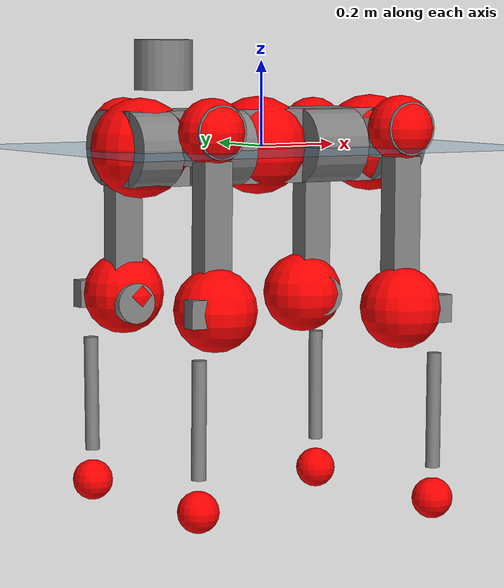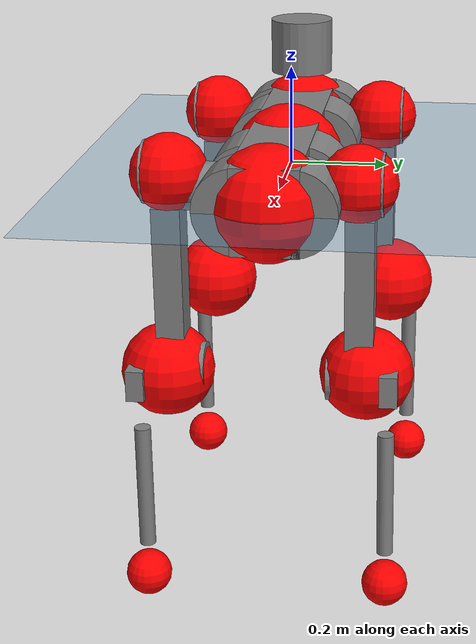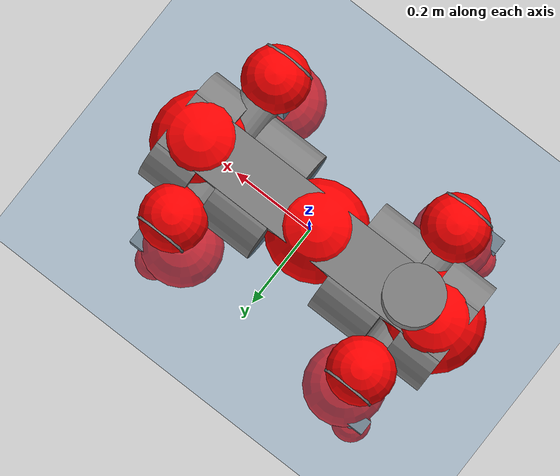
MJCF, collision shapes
<mujoco model="anymal_c">
  <compiler angle="radian" assetdir="assets" balanceinertia="true" inertiafromgeom="false"/>

  <option timestep="0.005" density="1.2" viscosity="2e-05"/>

  <size nkey="1"/>

  <visual>
    <quality shadowsize="8192"/>
    <map shadowclip="0.5"/>
  </visual>

  <default>
    <default class="/">
      <material specular="0" shininess="0.25"/>
      <geom contype="0" conaffinity="0" group="1" solref="-1000 -80"/>
      <site size="0.01 0.005 0.005" group="5"/>
      <general forcelimited="true" forcerange="-80 80" biastype="affine" gainprm="80" biasprm="0 -80 -2"/>
      <default class="anymal_c">
        <joint armature="0.01" damping="0.01" frictionloss="0.1"/>
        <default class="visual">
          <geom type="mesh" group="2"/>
          <default class="visual_zflip"/>
        </default>
        <default class="collision">
          <geom type="cylinder" group="3"/>
          <default class="foot">
            <geom size="0.03 0 0" type="sphere" condim="6" priority="1" friction="0.8 0.02 0.01" solimp="0.015 1 0.03"/>
          </default>
        </default>
      </default>
      <default class="reward_collision_sphere">
        <geom group="5" rgba="1 0 0 1"/>
      </default>
    </default>
  </default>

  <asset>
    <texture type="skybox" colorspace="auto" name="//unnamed_texture_0" builtin="gradient" rgb1="0.95 0.95 0.95" rgb2="0.95 0.95 0.95" width="100" height="600"/>
    <texture type="2d" colorspace="auto" name="texplane" builtin="checker" rgb1="0.345 0.575 0.748" rgb2="0.345 0.575 0.748" markrgb="1 1 1" width="512" height="512"/>
    <texture type="2d" colorspace="linear" name="base" file="base.png"/>
    <texture type="2d" colorspace="linear" name="top_shell" file="top_shell.png"/>
    <texture type="2d" colorspace="linear" name="bottom_shell" file="bottom_shell.png"/>
    <texture type="2d" colorspace="linear" name="remote" file="remote.png"/>
    <texture type="2d" colorspace="linear" name="hatch" file="hatch.png"/>
    <texture type="2d" colorspace="linear" name="handle" file="handle.png"/>
    <texture type="2d" colorspace="linear" name="face" file="face.png"/>
    <texture type="2d" colorspace="linear" name="battery" file="battery.png"/>
    <texture type="2d" colorspace="linear" name="lidar_cage" file="lidar_cage.png"/>
    <texture type="2d" colorspace="linear" name="depth_camera" file="depth_camera.png"/>
    <texture type="2d" colorspace="linear" name="wide_angle_camera" file="wide_angle_camera.png"/>
    <texture type="2d" colorspace="linear" name="lidar" file="lidar.png"/>
    <texture type="2d" colorspace="linear" name="drive" file="drive.png"/>
    <texture type="2d" colorspace="linear" name="hip_l" file="hip_l.png"/>
    <texture type="2d" colorspace="linear" name="shank_l" file="shank_l.png"/>
    <texture type="2d" colorspace="linear" name="foot" file="foot.png"/>
    <texture type="2d" colorspace="linear" name="thigh" file="thigh.png"/>
    <texture type="2d" colorspace="linear" name="shank_r" file="shank_r.png"/>
    <texture type="2d" colorspace="linear" name="hip_r" file="hip_r.png"/>
    <material name="MatPlane" class="/" texture="texplane" texuniform="true" texrepeat="2 2" specular="0.9" shininess="0.5"/>
    <material name="black_plastic" class="/" rgba="0.007 0.007 0.007 1"/>
    <material name="green" class="/" rgba="0.052 0.178 0.033 1"/>
    <material name="red" class="/" rgba="0.178 0.006 0.005 1"/>
    <material name="yellow" class="/" rgba="0.178 0.119 0.006 1"/>
    <material name="lwl" class="/" rgba="0.8 0.8 0.8 1"/>
    <material name="base" class="/" texture="base"/>
    <material name="top_shell" class="/" texture="top_shell"/>
    <material name="bottom_shell" class="/" texture="bottom_shell"/>
    <material name="hip_l" class="/" texture="hip_l"/>
    <material name="thigh" class="/" texture="thigh"/>
    <material name="shank_l" class="/" texture="shank_l"/>
    <material name="foot" class="/" texture="foot"/>
    <material name="hip_r" class="/" texture="hip_r"/>
    <material name="shank" class="/" texture="shank_r"/>
    <material name="hatch" class="/" texture="hatch"/>
    <material name="remote" class="/" texture="remote"/>
    <material name="handle" class="/" texture="handle"/>
    <material name="face" class="/" texture="face"/>
    <material name="depth_camera" class="/" texture="depth_camera"/>
    <material name="wide_angle_camera" class="/" texture="wide_angle_camera"/>
    <material name="battery" class="/" texture="battery"/>
    <material name="lidar_cage" class="/" texture="lidar_cage"/>
    <material name="lidar" class="/" texture="lidar"/>
    <material name="drive" class="/" texture="drive"/>
    <mesh name="base_0" class="/" file="base_0.obj"/>
    <mesh name="base_1" class="/" file="base_1.obj"/>
    <mesh name="base_2" class="/" file="base_2.obj"/>
    <mesh name="base_3" class="/" file="base_3.obj"/>
    <mesh name="base_4" class="/" file="base_4.obj"/>
    <mesh name="base_5" class="/" file="base_5.obj"/>
    <mesh name="top_shell" class="/" file="top_shell.obj"/>
    <mesh name="bottom_shell" class="/" file="bottom_shell.obj"/>
    <mesh name="remote" class="/" file="remote.obj"/>
    <mesh name="handle" class="/" file="handle.obj"/>
    <mesh name="face" class="/" file="face.obj"/>
    <mesh name="wide_angle_camera" class="/" file="wide_angle_camera.obj"/>
    <mesh name="depth_camera" class="/" file="depth_camera.obj"/>
    <mesh name="battery" class="/" file="battery.obj"/>
    <mesh name="lidar_cage" class="/" file="lidar_cage.obj"/>
    <mesh name="lidar" class="/" file="lidar.obj"/>
    <mesh name="drive" class="/" file="drive.obj"/>
    <mesh name="hip_l" class="/" file="hip_l.obj"/>
    <mesh name="thigh" class="/" file="thigh.obj"/>
    <mesh name="shank_l" class="/" file="shank_l.obj"/>
    <mesh name="foot" class="/" file="foot.obj"/>
    <mesh name="hip_r" class="/" file="hip_r.obj"/>
    <mesh name="hatch" class="/" file="hatch.obj"/>
    <mesh name="shank_r" class="/" file="shank_r.obj"/>
  </asset>

  <worldbody>
    <geom name="floor" class="/" size="100 100 0.125" type="plane" group="0" material="MatPlane"/>
    <light name="toplight_shadow" class="/" pos="0 0 5" dir="0.0990148 0.0990148 -0.990148" type="directional" ambient="0.04 0.04 0.04" diffuse="0.55 0.55 0.55" specular="0.12 0.12 0.12"/>
    <light name="toplight_fill" class="/" pos="0 0 5" dir="0.0990148 0.0990148 -0.990148" type="directional" castshadow="false" ambient="0.04 0.04 0.04" diffuse="0.3 0.3 0.3" specular="0.08 0.08 0.08"/>
    <body name="trunk" childclass="anymal_c" pos="-0.0145575 -0.00780711 0.00284276" quat="0.999996 0.00236615 0.00157628 0.000300086">
      <inertial pos="0.000753182 0.0028178 0.069641" quat="0.475643 0.488436 0.539513 0.494086" mass="16.8337" diaginertia="0.0721219 0.111813 1.21486"/>
      <joint name="//unnamed_joint_0" type="free" armature="0" damping="0" frictionloss="0"/>
      <geom name="//unnamed_geom_1" class="visual" material="green" mesh="base_0"/>
      <geom name="//unnamed_geom_2" class="visual" material="yellow" mesh="base_1"/>
      <geom name="//unnamed_geom_3" class="visual" material="red" mesh="base_2"/>
      <geom name="//unnamed_geom_4" class="visual" material="black_plastic" mesh="base_3"/>
      <geom name="//unnamed_geom_5" class="visual" material="lwl" mesh="base_4"/>
      <geom name="//unnamed_geom_6" class="visual" material="base" mesh="base_5"/>
      <geom name="trunk_1" class="collision" size="0.278261 0.0671664 0.0863568" type="box"/>
      <geom name="trunk_2" class="collision" size="0.0863568 0.0695652" pos="0.151883 0.0530155 0" quat="0.707107 0 0.707107 0"/>
      <geom name="trunk_3" class="collision" size="0.0863568 0.0695652" pos="-0.151883 0.0530155 0" quat="0.707107 0 0.707107 0"/>
      <geom name="trunk_4" class="collision" size="0.0863568 0.0695652" pos="0.151883 -0.0530155 0" quat="0.707107 0 0.707107 0"/>
      <geom name="trunk_5" class="collision" size="0.0863568 0.0695652" pos="-0.151883 -0.0530155 0" quat="0.707107 0 0.707107 0"/>
      <geom name="//unnamed_geom_12" class="visual" material="top_shell" mesh="top_shell"/>
      <geom name="//unnamed_geom_13" class="visual" material="bottom_shell" mesh="bottom_shell"/>
      <geom name="//unnamed_geom_14" class="visual" material="remote" mesh="remote"/>
      <geom name="//unnamed_geom_15" class="visual" material="handle" mesh="handle"/>
      <geom name="//unnamed_geom_16" class="visual" pos="0.289451 0 0" quat="1 0 0 0" material="face" mesh="face"/>
      <geom name="trunk_6" class="collision" size="0.0527736 0.0671664 0.0863568" pos="0.327858 0 0" type="box"/>
      <geom name="//unnamed_geom_18" class="collision" size="0.0863568 0.0527736" pos="0.327858 0.0530155 0" quat="0.707107 0 0.707107 0"/>
      <geom name="//unnamed_geom_19" class="collision" size="0.0863568 0.0527736" pos="0.327858 -0.0530155 0" quat="0.707107 0 0.707107 0"/>
      <geom name="//unnamed_geom_20" class="visual" pos="0.322406 0 -0.047055" quat="0.965926 0 0.258819 0" material="depth_camera" mesh="depth_camera"/>
      <geom name="//unnamed_geom_21" class="visual" pos="0.358234 0 0.0213006" material="wide_angle_camera" mesh="wide_angle_camera"/>
      <geom name="//unnamed_geom_22" class="visual_zflip" pos="-0.289451 0 0" quat="0 0 0 1" material="face" mesh="face"/>
      <geom name="trunk_7" class="collision" size="0.0527736 0.0671664 0.0863568" pos="-0.327858 0 0" quat="0 0 0 1" type="box"/>
      <geom name="//unnamed_geom_24" class="collision" size="0.0863568 0.0527736" pos="-0.327858 -0.0530155 0" quat="0 -0.707107 0 0.707107"/>
      <geom name="//unnamed_geom_25" class="collision" size="0.0863568 0.0527736" pos="-0.327858 0.0530155 0" quat="0 -0.707107 0 0.707107"/>
      <geom name="//unnamed_geom_26" class="visual" pos="-0.322406 0 -0.047055" quat="0 -0.258819 0 0.965926" material="depth_camera" mesh="depth_camera"/>
      <geom name="//unnamed_geom_27" class="visual_zflip" pos="-0.358234 0 0.0213006" quat="0 0 0 1" material="wide_angle_camera" mesh="wide_angle_camera"/>
      <geom name="//unnamed_geom_28" class="visual" material="battery" mesh="battery"/>
      <geom name="//unnamed_geom_29" class="visual" pos="0 0.058713 0.0358281" quat="0.683013 -0.183013 0.183013 0.683013" material="depth_camera" mesh="depth_camera"/>
      <geom name="//unnamed_geom_30" class="visual" pos="0 -0.058713 0.0358281" quat="0.683013 0.183013 0.183013 -0.683013" material="depth_camera" mesh="depth_camera"/>
      <geom name="//unnamed_geom_31" class="visual" pos="-0.254186 0 0.104582" quat="1 0 0 0" material="lidar_cage" mesh="lidar_cage"/>
      <geom name="trunk_8" class="collision" size="0.0671664 0.0575712" pos="-0.254186 0 0.189955"/>
      <geom name="//unnamed_geom_33" class="visual" pos="-0.254186 2.31996e-05 0.202334" quat="0.707107 0 0 -0.707107" material="lidar" mesh="lidar"/>
      <geom name="//unnamed_geom_34" class="visual" pos="0.209424 0.0790023 -1.14803e-08" quat="0.258819 0.965926 0 0" material="drive" mesh="drive"/>
      <geom name="//unnamed_geom_35" class="visual" pos="0.209424 -0.0790023 1.14803e-08" quat="0.258819 -0.965926 0 0" material="drive" mesh="drive"/>
      <geom name="//unnamed_geom_36" class="visual" pos="-0.209424 0.0790023 1.14803e-08" quat="0 0 0.965926 -0.258819" material="drive" mesh="drive"/>
      <geom name="//unnamed_geom_37" class="visual" pos="-0.209424 -0.0790023 -1.14803e-08" quat="0 0 -0.965926 -0.258819" material="drive" mesh="drive"/>
      <geom name="//unnamed_geom_38" class="visual" pos="0.0810043 0 0.103871" quat="1 0 0 0" material="hatch" mesh="hatch"/>
      <geom name="//unnamed_geom_39" class="reward_collision_sphere" size="0.115142"/>
      <geom name="//unnamed_geom_40" class="reward_collision_sphere" size="0.115142" pos="0.314241 0 0"/>
      <geom name="//unnamed_geom_41" class="reward_collision_sphere" size="0.115142" pos="-0.314241 0 0"/>
      <site name="imu" pos="0.142797 0.0265884 0.146203" size="0.0095952"/>
      <camera name="track" pos="0 -1.51473 0" quat="0.707107 0.707107 0 0" mode="trackcom"/>
      <camera name="ego_camera" pos="0.314241 0 -0.0569154" quat="-0.5 -0.5 0.5 0.5"/>
      <body name="LF_HIP" pos="0.20684 0.0786177 0.0101928" quat="0.253231 0.967399 0.00307075 0.00195031">
        <inertial pos="0.0550625 -0.0035628 -0.0107961" quat="-0.127799 0.708297 -0.137355 0.680527" mass="2.68662" diaginertia="0.00106201 0.00144469 0.0206098"/>
        <joint name="LF_HAA" pos="0 0 0" axis="0.9962 0.000295291 -0.0870985" stiffness="0.0735119" range="-0.661432 0.493637" armature="0.0167552" damping="0" frictionloss="0.0524364"/>
        <geom name="//unnamed_geom_42" class="visual" pos="0 -0.000675335 0.000110923" quat="0.258819 -0.965926 0 0" material="hip_l" mesh="hip_l"/>
        <geom name="//unnamed_geom_43" class="visual" pos="0.0418289 -0.0516986 -0.0347707" quat="0.183013 -0.683013 0.683013 0.183013" material="drive" mesh="drive"/>
        <geom name="//unnamed_geom_44" class="collision" size="0.047976 0.0671664" pos="0.0418289 -0.00905792 -0.00982502" quat="-0.353553 -0.612372 0.612372 -0.353553"/>
        <body name="LF_THIGH" pos="0.0527931 -0.0546175 -0.0499269" quat="0.181204 -0.685852 0.681046 0.181517">
          <inertial pos="0.024225 -0.000548424 -0.333005" quat="0.990942 0.031524 -0.104418 0.0783404" mass="2.8685" diaginertia="0.00535165 0.00805407 0.0271712"/>
          <joint name="LF_HFE" pos="0 0 0" axis="0.998854 -0.0145333 0.045605" stiffness="0.0533362" range="-3.30524 3.13121" armature="0.00248275" damping="0.0529878" frictionloss="0.144551"/>
          <geom name="//unnamed_geom_45" class="visual" pos="-0.00117489 -1.85135e-06 0" quat="0.707107 0 0 -0.707107" material="thigh" mesh="thigh"/>
          <geom name="//unnamed_geom_46" class="collision" size="0.0623688 0.0383808" pos="0.0279325 0 0" quat="0.5 0.5 -0.5 -0.5"/>
          <geom name="//unnamed_geom_47" class="collision" size="0.035982 0.0287856 0.135594" pos="0.0209494 0 -0.201074" quat="0.707107 0 0 -0.707107" type="box"/>
          <geom name="//unnamed_geom_48" class="visual" pos="0.0700407 0 -0.405522" quat="1 0 0 0" material="drive" mesh="drive"/>
          <geom name="//unnamed_geom_49" class="collision" size="0.047976 0.0671664" pos="0.0211589 0 -0.405522" quat="0.707107 0 0.707107 0"/>
          <geom name="//unnamed_geom_50" class="reward_collision_sphere" size="0.0767616" pos="0.0174578 0 0"/>
          <body name="LF_SHANK" pos="0.0682726 0.0169817 -0.401995" quat="0.999982 -0.00490466 -0.00310536 -0.00124643">
            <inertial pos="-0.00512417 -0.0408231 -0.114499" quat="0.988535 -0.115706 -0.0568309 -0.0786146" mass="0.39232" diaginertia="0.00169539 0.00198739 0.00664312"/>
            <joint name="LF_KFE" pos="0 0 0" axis="0.999366 0.00236555 -0.035524" range="-3.16106 3.22748" armature="0.00853468" damping="0.0619389" frictionloss="0.0800654"/>
            <geom name="//unnamed_geom_51" class="visual" pos="-0.000383105 -0.00204273 0" quat="0.707107 0 0 -0.707107" material="shank_l" mesh="shank_l"/>
            <geom name="LF_kfe_act" class="collision" size="0.0575712 0.0191904" pos="0.0139663 0 0" quat="0.5 0.5 -0.5 -0.5"/>
            <geom name="//unnamed_geom_53" class="collision" size="0.0551715 0.0323838 0.0182309" pos="0.0139663 -0.0435477 0" quat="0.5 0.5 -0.5 -0.5" type="box"/>
            <geom name="//unnamed_geom_54" class="visual" pos="0.00911307 -0.0672684 -0.480893" quat="0.382683 0 0 -0.92388" material="foot" mesh="foot"/>
            <geom name="LF_calf" class="collision" size="0.0167916 0.135534" pos="0.00911298 -0.0666101 -0.240446" quat="0.707107 0 0 -0.707107"/>
            <geom name="LF_foot" class="foot" size="0.0159835" pos="0.00911298 -0.0666101 -0.448878" quat="0.707107 0 0 -0.707107"/>
            <geom name="//unnamed_geom_57" class="reward_collision_sphere" size="0.095952" pos="-0.0349156 0 0"/>
            <geom name="//unnamed_geom_58" class="reward_collision_sphere" size="0.047976" pos="0.00911298 -0.0666101 -0.448878"/>
            <site name="LF_foot" class="foot" pos="0.00911298 -0.0666101 -0.448878" quat="0.707107 0 0 -0.707107" size="0.0095952"/>
          </body>
        </body>
      </body>
      <body name="RF_HIP" pos="0.226134 -0.0950076 0.0133096" quat="0.259457 -0.965754 -0.000871352 -0.00047053">
        <inertial pos="0.0233171 0.00542461 0.00328183" quat="0.160325 0.694457 0.162372 0.682394" mass="1.8689" diaginertia="0.000805858 0.0011215 0.0154487"/>
        <joint name="RF_HAA" pos="0 0 0" axis="0.997434 -0.010998 0.0707361" range="-0.183827 0.642458" armature="0.0099728" damping="0" frictionloss="0.161223"/>
        <geom name="//unnamed_geom_59" class="visual" pos="0 0.00067533 0.000110923" quat="0.258819 0.965926 0 0" material="hip_r" mesh="hip_r"/>
        <geom name="//unnamed_geom_60" class="visual" pos="0.0418289 0.0516986 -0.0347707" quat="0.183013 0.683013 0.683013 -0.183013" material="drive" mesh="drive"/>
        <geom name="//unnamed_geom_61" class="collision" size="0.047976 0.0671664" pos="0.0418289 0.00905792 -0.00982502" quat="-0.353553 0.612372 0.612372 0.353553"/>
        <body name="RF_THIGH" pos="0.0423029 0.0615195 -0.0699242" quat="0.183415 0.683121 0.683048 -0.182069">
          <inertial pos="0.0309044 -0.0174532 -0.355738" quat="0.992762 -0.00428277 -0.0809059 0.0886507" mass="2.46212" diaginertia="0.00491035 0.00641883 0.0220781"/>
          <joint name="RF_HFE" pos="0 0 0" axis="0.999316 -0.0369036 -0.0023009" range="-3.0637 2.95507" armature="0.012931" damping="0.0638164" frictionloss="0.0722083"/>
          <geom name="//unnamed_geom_62" class="visual" pos="-0.00117489 -1.85135e-06 0" quat="0.707107 0 0 -0.707107" material="thigh" mesh="thigh"/>
          <geom name="//unnamed_geom_63" class="collision" size="0.0623688 0.0383808" pos="0.0279325 0 0" quat="0.5 0.5 0.5 0.5"/>
          <geom name="//unnamed_geom_64" class="collision" size="0.035982 0.0287856 0.135594" pos="0.0209494 0 -0.201074" quat="0.707107 0 0 0.707107" type="box"/>
          <geom name="//unnamed_geom_65" class="visual" pos="0.0700407 0 -0.405522" quat="1 0 0 0" material="drive" mesh="drive"/>
          <geom name="//unnamed_geom_66" class="collision" size="0.047976 0.0671664" pos="0.0211589 0 -0.405522" quat="0.707107 0 0.707107 0"/>
          <geom name="//unnamed_geom_67" class="reward_collision_sphere" size="0.0767616" pos="0.0174578 0 0"/>
          <body name="RF_SHANK" pos="0.0699946 -0.00643332 -0.419306" quat="0.999966 -0.00272514 -0.00151051 -0.00759732">
            <inertial pos="-0.0137953 0.0574922 -0.128357" quat="0.990108 0.134778 0.00359094 0.0388364" mass="0.641264" diaginertia="0.00157058 0.00200221 0.00546416"/>
            <joint name="RF_KFE" pos="0 0 0" axis="0.999457 -0.0329302 0.00140371" range="-2.82804 3.19442" armature="0.00743493" damping="0" frictionloss="0.0272183"/>
            <geom name="//unnamed_geom_68" class="visual" pos="-0.000383103 0.00204273 0" quat="0.707107 0 0 0.707107" material="shank" mesh="shank_r"/>
            <geom name="RF_kfe_act" class="collision" size="0.0575712 0.0191904" pos="0.0139663 0 0" quat="0.5 0.5 0.5 0.5"/>
            <geom name="//unnamed_geom_70" class="collision" size="0.0551715 0.0323838 0.0182309" pos="0.0139663 0.0435477 0" quat="0.5 0.5 0.5 0.5" type="box"/>
            <geom name="//unnamed_geom_71" class="visual" pos="0.00911289 0.0672684 -0.480893" quat="0.382683 0 0 0.92388" material="foot" mesh="foot"/>
            <geom name="RF_calf" class="collision" size="0.0167916 0.135534" pos="0.00911298 0.0666101 -0.240446" quat="0.707107 0 0 0.707107"/>
            <geom name="RF_foot" class="foot" size="0.0304999" pos="0.00911298 0.0666101 -0.448878" quat="0.707107 0 0 0.707107"/>
            <geom name="//unnamed_geom_74" class="reward_collision_sphere" size="0.095952" pos="-0.0349156 0 0"/>
            <geom name="//unnamed_geom_75" class="reward_collision_sphere" size="0.047976" pos="0.00911298 0.0666101 -0.448878"/>
            <site name="RF_foot" class="foot" pos="0.00911298 0.0666101 -0.448878" quat="0.707107 0 0 0.707107" size="0.0095952"/>
          </body>
        </body>
      </body>
      <body name="LH_HIP" pos="-0.227297 0.0930413 0.00484204" quat="0.00178266 -0.000147028 0.966612 -0.256239">
        <inertial pos="0.0239347 0.0288601 -0.0120237" quat="0.0859863 0.67249 0.178126 0.713187" mass="2.75217" diaginertia="0.00105392 0.00123684 0.02268"/>
        <joint name="LH_HAA" pos="0 0 0" axis="0.999096 -0.0352452 -0.0237852" stiffness="0.00313351" range="-0.723061 0.565559" armature="0.00957745" damping="0.0101295" frictionloss="0.130496"/>
        <geom name="//unnamed_geom_76" class="visual" pos="0 0.00067533 0.000110923" quat="-0.258819 -0.965926 0 0" material="hip_r" mesh="hip_r"/>
        <geom name="//unnamed_geom_77" class="visual" pos="0.0418289 0.0516986 -0.0347707" quat="0.183013 0.683013 0.683013 -0.183013" material="drive" mesh="drive"/>
        <geom name="//unnamed_geom_78" class="collision" size="0.047976 0.0671664" pos="0.0418289 0.00905792 -0.00982502" quat="-0.353553 0.612372 0.612372 0.353553"/>
        <body name="LH_THIGH" pos="0.0320247 0.0472793 -0.0592736" quat="0.183261 0.680734 0.685612 -0.181527">
          <inertial pos="0.0162474 -0.0160064 -0.352027" quat="0.985447 -0.00281193 -0.143555 0.0909792" mass="2.15379" diaginertia="0.0048788 0.00612505 0.0251399"/>
          <joint name="LH_HFE" pos="0 0 0" axis="0.997204 0.0105153 -0.0739901" stiffness="0.0600974" range="-3.37273 2.92325" armature="0.00266764" damping="0" frictionloss="0.0302436"/>
          <geom name="//unnamed_geom_79" class="visual" pos="-0.00117489 -1.85135e-06 0" quat="0.707107 0 0 -0.707107" material="thigh" mesh="thigh"/>
          <geom name="//unnamed_geom_80" class="collision" size="0.0623688 0.0383808" pos="0.0279325 0 0" quat="0.5 0.5 -0.5 -0.5"/>
          <geom name="//unnamed_geom_81" class="collision" size="0.035982 0.0287856 0.135594" pos="0.0209494 0 -0.201074" quat="0.707107 0 0 -0.707107" type="box"/>
          <geom name="//unnamed_geom_82" class="visual" pos="0.0700407 0 -0.405522" quat="1 0 0 0" material="drive" mesh="drive"/>
          <geom name="//unnamed_geom_83" class="collision" size="0.047976 0.0671664" pos="0.0211589 0 -0.405522" quat="0.707107 0 0.707107 0"/>
          <geom name="//unnamed_geom_84" class="reward_collision_sphere" size="0.0767616" pos="0.0174578 0 0"/>
          <body name="LH_SHANK" pos="0.0807749 -0.013298 -0.38881" quat="0.999964 -0.0042665 0.00183869 0.00706419">
            <inertial pos="0.000445329 0.04593 -0.1325" quat="0.996808 0.0794202 -0.0048862 -0.00644924" mass="0.611449" diaginertia="0.00170788 0.00252734 0.00632831"/>
            <joint name="LH_KFE" pos="0 0 0" axis="0.999237 -0.0303279 -0.0246021" stiffness="0.0437663" range="-3.25469 3.35851" armature="0.00703412" damping="0.00575921" frictionloss="0.157408"/>
            <geom name="//unnamed_geom_85" class="visual" pos="-0.000383103 0.00204273 0" quat="-0.707107 0 0 -0.707107" material="shank" mesh="shank_r"/>
            <geom name="LH_kfe_act" class="collision" size="0.0575712 0.0191904" pos="0.0139663 0 0" quat="0.5 0.5 -0.5 -0.5"/>
            <geom name="//unnamed_geom_87" class="collision" size="0.0551715 0.0323838 0.0182309" pos="0.0139663 0.0435477 0" quat="0.5 0.5 -0.5 -0.5" type="box"/>
            <geom name="//unnamed_geom_88" class="visual" pos="0.00911289 0.0672684 -0.480893" quat="-0.382683 0 0 -0.92388" material="foot" mesh="foot"/>
            <geom name="LH_calf" class="collision" size="0.0167916 0.135534" pos="0.00911298 0.0666101 -0.240446" quat="0.707107 0 0 -0.707107"/>
            <geom name="LH_foot" class="foot" size="0.0431311" pos="0.00911298 0.0666101 -0.448878" quat="0.707107 0 0 -0.707107"/>
            <geom name="//unnamed_geom_91" class="reward_collision_sphere" size="0.095952" pos="-0.0349156 0 0"/>
            <geom name="//unnamed_geom_92" class="reward_collision_sphere" size="0.047976" pos="0.00911298 0.0666101 -0.448878"/>
            <site name="LH_foot" class="foot" pos="0.00911298 0.0666101 -0.448878" quat="0.707107 0 0 -0.707107" size="0.0095952"/>
          </body>
        </body>
      </body>
      <body name="RH_HIP" pos="-0.193666 -0.0869876 0.00363719" quat="-0.000596417 0.000529478 -0.964998 -0.262255">
        <inertial pos="0.0274826 -0.0211912 -0.0122505" quat="-0.149914 0.685374 -0.0693758 0.709208" mass="2.62302" diaginertia="0.000899875 0.00111815 0.0176056"/>
        <joint name="RH_HAA" pos="0 0 0" axis="0.996675 -0.0794068 -0.018244" stiffness="0.0224562" range="-0.716583 0.351648" armature="0.0136876" damping="0" frictionloss="0.0885343"/>
        <geom name="//unnamed_geom_93" class="visual" pos="0 -0.000675335 0.000110923" quat="-0.258819 0.965926 0 0" material="hip_l" mesh="hip_l"/>
        <geom name="//unnamed_geom_94" class="visual" pos="0.0418289 -0.0516986 -0.0347707" quat="-0.183013 0.683013 -0.683013 -0.183013" material="drive" mesh="drive"/>
        <geom name="//unnamed_geom_95" class="collision" size="0.047976 0.0671664" pos="0.0418289 -0.00905792 -0.00982502" quat="0.353553 0.612372 -0.612372 0.353553"/>
        <body name="RH_THIGH" pos="0.0382256 -0.0490749 -0.0741514" quat="-0.183386 0.682973 -0.681965 -0.18666">
          <inertial pos="0.0156054 0.0025803 -0.356185" quat="0.985043 -0.00782426 -0.16171 0.0589886" mass="2.86755" diaginertia="0.00508724 0.00610596 0.01889"/>
          <joint name="RH_HFE" pos="0 0 0" axis="0.999551 -0.00131462 0.0299457" stiffness="0.059443" range="-3.16523 2.99384" armature="0.00372985" damping="0.0738448" frictionloss="0.140135"/>
          <geom name="//unnamed_geom_96" class="visual" pos="-0.00117489 -1.85135e-06 0" quat="0.707107 0 0 -0.707107" material="thigh" mesh="thigh"/>
          <geom name="//unnamed_geom_97" class="collision" size="0.0623688 0.0383808" pos="0.0279325 0 0" quat="0.5 0.5 0.5 0.5"/>
          <geom name="//unnamed_geom_98" class="collision" size="0.035982 0.0287856 0.135594" pos="0.0209494 0 -0.201074" quat="0.707107 0 0 0.707107" type="box"/>
          <geom name="//unnamed_geom_99" class="visual" pos="0.0700407 0 -0.405522" quat="1 0 0 0" material="drive" mesh="drive"/>
          <geom name="//unnamed_geom_100" class="collision" size="0.047976 0.0671664" pos="0.0211589 0 -0.405522" quat="0.707107 0 0.707107 0"/>
          <geom name="//unnamed_geom_101" class="reward_collision_sphere" size="0.0767616" pos="0.0174578 0 0"/>
          <body name="RH_SHANK" pos="0.0708098 0.00155281 -0.402456" quat="1 0.000241599 0.000455502 -0.000247777">
            <inertial pos="0.0182016 -0.029914 -0.130394" quat="0.992625 -0.116689 -0.0131585 -0.0300941" mass="0.448679" diaginertia="0.00200698 0.00197768 0.00679652"/>
            <joint name="RH_KFE" pos="0 0 0" axis="0.999445 -0.00203135 -0.033265" stiffness="0.0218384" range="-2.99293 2.82699" armature="0.00980544" damping="0" frictionloss="0.0196774"/>
            <geom name="//unnamed_geom_102" class="visual" pos="-0.000383105 -0.00204273 0" quat="0.707107 0 0 -0.707107" material="shank_l" mesh="shank_l"/>
            <geom name="RH_kfe_act" class="collision" size="0.0575712 0.0191904" pos="0.0139663 0 0" quat="0.5 0.5 0.5 0.5"/>
            <geom name="//unnamed_geom_104" class="collision" size="0.0551715 0.0323838 0.0182309" pos="0.0139663 -0.0435477 0" quat="0.5 0.5 0.5 0.5" type="box"/>
            <geom name="//unnamed_geom_105" class="visual" pos="0.00911307 -0.0672684 -0.480893" quat="0.382683 0 0 -0.92388" material="foot" mesh="foot"/>
            <geom name="RH_calf" class="collision" size="0.0167916 0.135534" pos="0.00911298 -0.0666101 -0.240446" quat="0.707107 0 0 0.707107"/>
            <geom name="RH_foot" class="foot" size="0.0121895" pos="0.00911298 -0.0666101 -0.448878" quat="0.707107 0 0 0.707107"/>
            <geom name="//unnamed_geom_108" class="reward_collision_sphere" size="0.095952" pos="-0.0349156 0 0"/>
            <geom name="//unnamed_geom_109" class="reward_collision_sphere" size="0.047976" pos="0.00911298 -0.0666101 -0.448878"/>
            <site name="RH_foot" class="foot" pos="0.00911298 -0.0666101 -0.448878" quat="0.707107 0 0 0.707107" size="0.0095952"/>
          </body>
        </body>
      </body>
    </body>
  </worldbody>

  <contact>
    <pair class="/" geom1="floor" geom2="LF_foot" name="//unnamed_contact_0"/>
    <pair class="/" geom1="floor" geom2="RF_foot" name="//unnamed_contact_1"/>
    <pair class="/" geom1="floor" geom2="LH_foot" name="//unnamed_contact_2"/>
    <pair class="/" geom1="floor" geom2="RH_foot" name="//unnamed_contact_3"/>
  </contact>

  <actuator>
    <general name="LF_HAA" class="/" joint="LF_HAA" forcerange="-80.6066 80.6066" gainprm="75.5617" biasprm="0 -75.5617 -1.5966"/>
    <general name="LF_HFE" class="/" joint="LF_HFE" forcerange="-116.094 116.094" gainprm="75.5617" biasprm="0 -75.5617 -1.5966"/>
    <general name="LF_KFE" class="/" joint="LF_KFE" forcerange="-52.9637 52.9637" gainprm="75.5617" biasprm="0 -75.5617 -1.5966"/>
    <general name="RF_HAA" class="/" joint="RF_HAA" forcerange="-78.726 78.726" gainprm="75.5617" biasprm="0 -75.5617 -1.5966"/>
    <general name="RF_HFE" class="/" joint="RF_HFE" forcerange="-65.8113 65.8113" gainprm="75.5617" biasprm="0 -75.5617 -1.5966"/>
    <general name="RF_KFE" class="/" joint="RF_KFE" forcerange="-46.8606 46.8606" gainprm="75.5617" biasprm="0 -75.5617 -1.5966"/>
    <general name="LH_HAA" class="/" joint="LH_HAA" forcerange="-79.2216 79.2216" gainprm="75.5617" biasprm="0 -75.5617 -1.5966"/>
    <general name="LH_HFE" class="/" joint="LH_HFE" forcerange="-45.8531 45.8531" gainprm="75.5617" biasprm="0 -75.5617 -1.5966"/>
    <general name="LH_KFE" class="/" joint="LH_KFE" forcerange="-105.445 105.445" gainprm="75.5617" biasprm="0 -75.5617 -1.5966"/>
    <general name="RH_HAA" class="/" joint="RH_HAA" forcerange="-84.2757 84.2757" gainprm="75.5617" biasprm="0 -75.5617 -1.5966"/>
    <general name="RH_HFE" class="/" joint="RH_HFE" forcerange="-57.5363 57.5363" gainprm="75.5617" biasprm="0 -75.5617 -1.5966"/>
    <general name="RH_KFE" class="/" joint="RH_KFE" forcerange="-125.484 125.484" gainprm="75.5617" biasprm="0 -75.5617 -1.5966"/>
  </actuator>

  <sensor>
    <gyro site="imu" name="imu_angular_velocity"/>
    <velocimeter site="imu" name="imu_linear_velocity"/>
    <framelinvel objtype="site" objname="LF_foot" name="LF_foot_global_linear_velocity"/>
    <framelinvel objtype="site" objname="RF_foot" name="RF_foot_global_linear_velocity"/>
    <framelinvel objtype="site" objname="LH_foot" name="LH_foot_global_linear_velocity"/>
    <framelinvel objtype="site" objname="RH_foot" name="RH_foot_global_linear_velocity"/>
  </sensor>

  <keyframe>
    <key name="home" qpos="0 0 0.55 1 0 0 0 0 0.4 -0.8 0 -0.4 0.8 0 -0.4 0.8 0 0.4 -0.8"/>
  </keyframe>
</mujoco>
